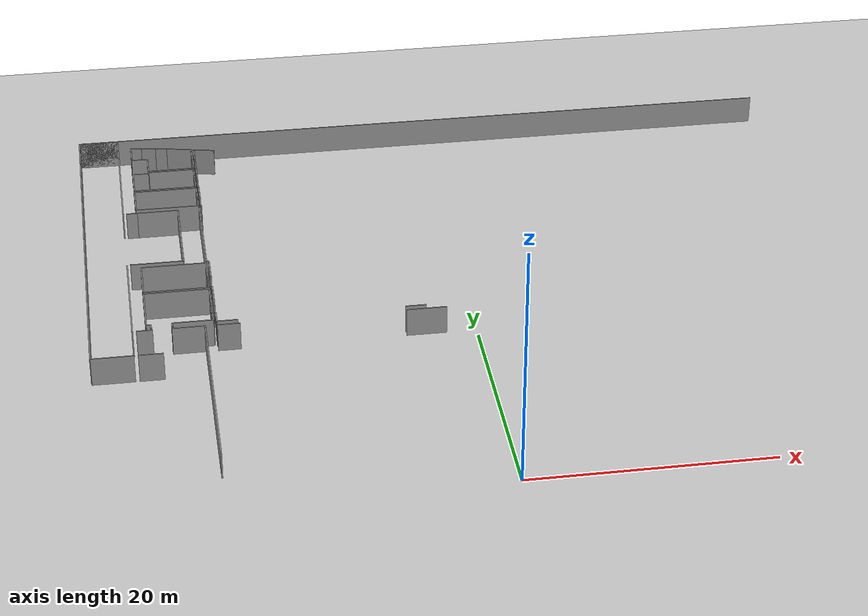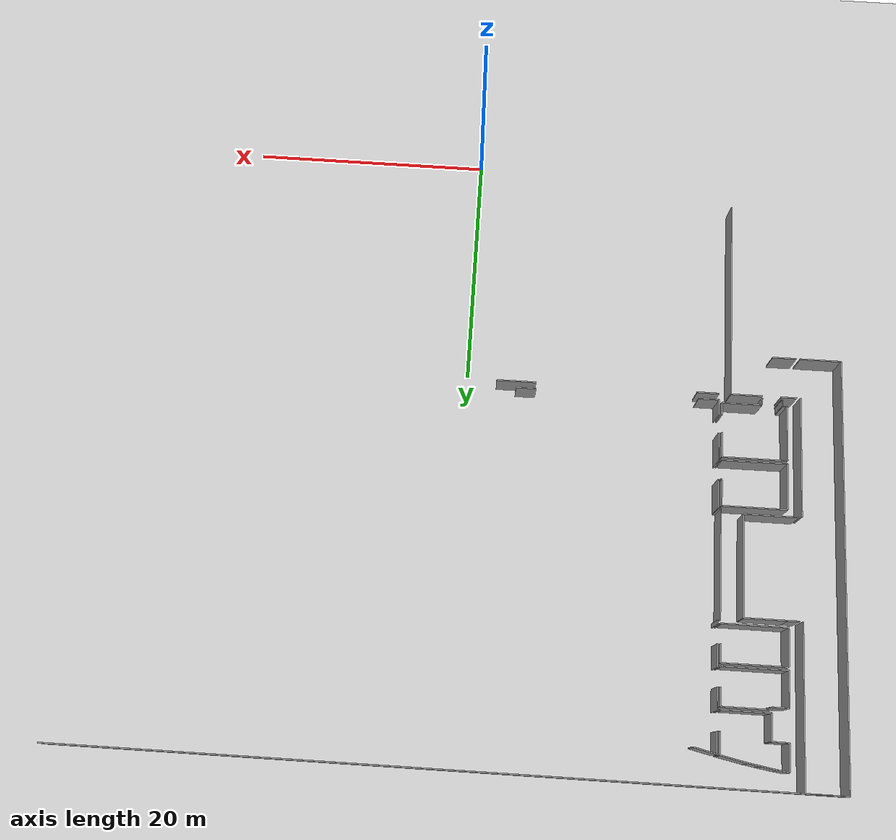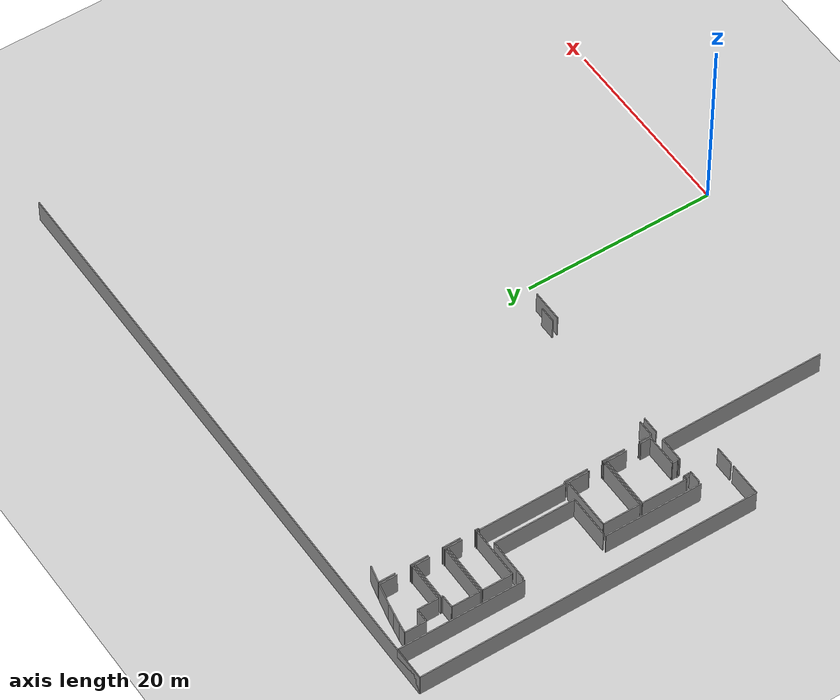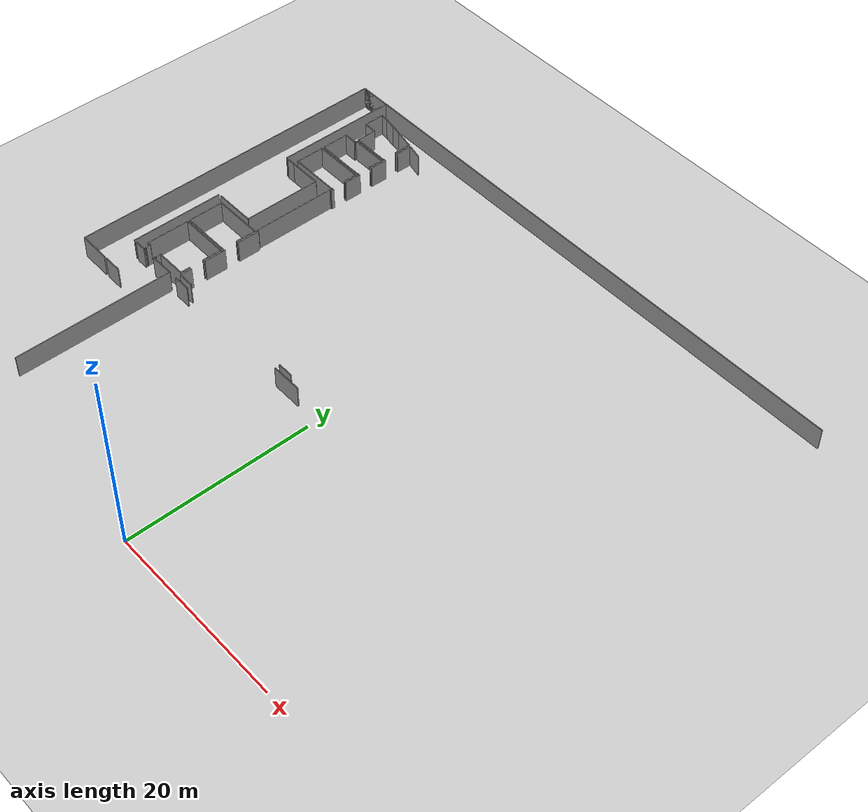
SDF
<sdf version="1.6">
 <world name="default">
  <model name="ground_plane">
   <static>1</static>
   <link name="link">
    <collision name="collision">
     <geometry><plane><normal>0 0 1</normal><size>100 100</size></plane></geometry>
     <surface><friction><ode><mu>100</mu><mu2>50</mu2></ode></friction></surface>
    </collision>
    <visual name="visual">
     <cast_shadows>0</cast_shadows>
     <geometry><plane><normal>0 0 1</normal><size>100 100</size></plane></geometry>
     <material>
      <script><uri>file://media/materials/scripts/gazebo.material</uri><name>Gazebo/Grey</name></script>
     </material>
    </visual>
   </link>
  </model>
  <model name="50041193">
   <static>1</static>
   <link name="Wall_0">
    <collision name="Wall_0_Collision">
     <geometry><box><size>2.23893400435 0.1 2.5</size></box></geometry>
     <pose>1.11946700217 0 1.25 0 0 0</pose>
    </collision>
    <visual name="Wall_0_Visual">
     <pose>1.11946700217 0 1.25 0 0 0</pose>
     <geometry><box><size>2.23893400435 0.1 2.5</size></box></geometry>
     <material>
      <script><uri>file://media/materials/scripts/gazebo.material</uri><name>Gazebo/Grey</name></script>
      <ambient>1 1 1 1</ambient>
     </material>
    </visual>
    <pose>4.6344377089 -3.74422712773 0 0 0 1.57079632679</pose>
   </link>
   <link name="Wall_1">
    <collision name="Wall_1_Collision">
     <geometry><box><size>0.972347669635 0.1 2.5</size></box></geometry>
     <pose>0.486173834817 0 1.25 0 0 0</pose>
    </collision>
    <visual name="Wall_1_Visual">
     <pose>0.486173834817 0 1.25 0 0 0</pose>
     <geometry><box><size>0.972347669635 0.1 2.5</size></box></geometry>
     <material>
      <script><uri>file://media/materials/scripts/gazebo.material</uri><name>Gazebo/Grey</name></script>
      <ambient>1 1 1 1</ambient>
     </material>
    </visual>
    <pose>4.6344377089 -1.50529312339 0 0 0 -0.128531046348</pose>
   </link>
   <link name="Wall_2">
    <collision name="Wall_2_Collision">
     <geometry><box><size>1.2935995405 0.1 2.5</size></box></geometry>
     <pose>0.646799770251 0 1.25 0 0 0</pose>
    </collision>
    <visual name="Wall_2_Visual">
     <pose>0.646799770251 0 1.25 0 0 0</pose>
     <geometry><box><size>1.2935995405 0.1 2.5</size></box></geometry>
     <material>
      <script><uri>file://media/materials/scripts/gazebo.material</uri><name>Gazebo/Grey</name></script>
      <ambient>1 1 1 1</ambient>
     </material>
    </visual>
    <pose>5.59876472607 -1.62992616315 0 0 0 -0.167787734921</pose>
   </link>
   <link name="Wall_3">
    <collision name="Wall_3_Collision">
     <geometry><box><size>1.03198427809 0.1 2.5</size></box></geometry>
     <pose>0.515992139046 0 1.25 0 0 0</pose>
    </collision>
    <visual name="Wall_3_Visual">
     <pose>0.515992139046 0 1.25 0 0 0</pose>
     <geometry><box><size>1.03198427809 0.1 2.5</size></box></geometry>
     <material>
      <script><uri>file://media/materials/scripts/gazebo.material</uri><name>Gazebo/Grey</name></script>
      <ambient>1 1 1 1</ambient>
     </material>
    </visual>
    <pose>6.87419777092 -1.84595930713 0 0 0 -0.165812721549</pose>
   </link>
   <link name="Wall_4">
    <collision name="Wall_4_Collision">
     <geometry><box><size>2.25865235353 0.1 2.5</size></box></geometry>
     <pose>1.12932617677 0 1.25 0 0 0</pose>
    </collision>
    <visual name="Wall_4_Visual">
     <pose>1.12932617677 0 1.25 0 0 0</pose>
     <geometry><box><size>2.25865235353 0.1 2.5</size></box></geometry>
     <material>
      <script><uri>file://media/materials/scripts/gazebo.material</uri><name>Gazebo/Grey</name></script>
      <ambient>1 1 1 1</ambient>
     </material>
    </visual>
    <pose>7.89202790804 -2.016292399 0 0 0 -0.204866128414</pose>
   </link>
   <link name="Wall_5">
    <collision name="Wall_5_Collision">
     <geometry><box><size>1.85869330385 0.1 2.5</size></box></geometry>
     <pose>0.929346651925 0 1.25 0 0 0</pose>
    </collision>
    <visual name="Wall_5_Visual">
     <pose>0.929346651925 0 1.25 0 0 0</pose>
     <geometry><box><size>1.85869330385 0.1 2.5</size></box></geometry>
     <material>
      <script><uri>file://media/materials/scripts/gazebo.material</uri><name>Gazebo/Grey</name></script>
      <ambient>1 1 1 1</ambient>
     </material>
    </visual>
    <pose>10.1034478376 -2.47578380164 0 0 0 -1.57079632679</pose>
   </link>
   <link name="Wall_6">
    <collision name="Wall_6_Collision">
     <geometry><box><size>0.100270692745 0.1 2.5</size></box></geometry>
     <pose>0.0501353463723 0 1.25 0 0 0</pose>
    </collision>
    <visual name="Wall_6_Visual">
     <pose>0.0501353463723 0 1.25 0 0 0</pose>
     <geometry><box><size>0.100270692745 0.1 2.5</size></box></geometry>
     <material>
      <script><uri>file://media/materials/scripts/gazebo.material</uri><name>Gazebo/Grey</name></script>
      <ambient>1 1 1 1</ambient>
     </material>
    </visual>
    <pose>10.1034478376 -5.85833746362 0 0 0 -1.57079632679</pose>
   </link>
   <link name="Wall_7">
    <collision name="Wall_7_Collision">
     <geometry><box><size>4.05797653996 0.1 2.5</size></box></geometry>
     <pose>2.02898826998 0 1.25 0 0 0</pose>
    </collision>
    <visual name="Wall_7_Visual">
     <pose>2.02898826998 0 1.25 0 0 0</pose>
     <geometry><box><size>4.05797653996 0.1 2.5</size></box></geometry>
     <material>
      <script><uri>file://media/materials/scripts/gazebo.material</uri><name>Gazebo/Grey</name></script>
      <ambient>1 1 1 1</ambient>
     </material>
    </visual>
    <pose>10.1034478376 -5.95860815637 0 0 0 3.14159265359</pose>
   </link>
   <link name="Wall_8">
    <collision name="Wall_8_Collision">
     <geometry><box><size>2.20242225526 0.1 2.5</size></box></geometry>
     <pose>1.10121112763 0 1.25 0 0 0</pose>
    </collision>
    <visual name="Wall_8_Visual">
     <pose>1.10121112763 0 1.25 0 0 0</pose>
     <geometry><box><size>2.20242225526 0.1 2.5</size></box></geometry>
     <material>
      <script><uri>file://media/materials/scripts/gazebo.material</uri><name>Gazebo/Grey</name></script>
      <ambient>1 1 1 1</ambient>
     </material>
    </visual>
    <pose>6.04547129767 -5.95860815637 0 0 0 1.57079632679</pose>
   </link>
   <link name="Wall_9">
    <collision name="Wall_9_Collision">
     <geometry><box><size>1.41108426429 0.1 2.5</size></box></geometry>
     <pose>0.705542132143 0 1.25 0 0 0</pose>
    </collision>
    <visual name="Wall_9_Visual">
     <pose>0.705542132143 0 1.25 0 0 0</pose>
     <geometry><box><size>1.41108426429 0.1 2.5</size></box></geometry>
     <material>
      <script><uri>file://media/materials/scripts/gazebo.material</uri><name>Gazebo/Grey</name></script>
      <ambient>1 1 1 1</ambient>
     </material>
    </visual>
    <pose>6.04547129767 -3.7561859011 0 0 0 3.13311766962</pose>
   </link>
   <link name="Wall_10">
    <collision name="Wall_10_Collision">
     <geometry><box><size>2.9570322925 0.1 2.5</size></box></geometry>
     <pose>1.47851614625 0 1.25 0 0 0</pose>
    </collision>
    <visual name="Wall_10_Visual">
     <pose>1.47851614625 0 1.25 0 0 0</pose>
     <geometry><box><size>2.9570322925 0.1 2.5</size></box></geometry>
     <material>
      <script><uri>file://media/materials/scripts/gazebo.material</uri><name>Gazebo/Grey</name></script>
      <ambient>1 1 1 1</ambient>
     </material>
    </visual>
    <pose>4.63786902538 -9.36501582218 0 0 0 1.57079632679</pose>
   </link>
   <link name="Wall_11">
    <collision name="Wall_11_Collision">
     <geometry><box><size>1.38892066034 0.1 2.5</size></box></geometry>
     <pose>0.694460330169 0 1.25 0 0 0</pose>
    </collision>
    <visual name="Wall_11_Visual">
     <pose>0.694460330169 0 1.25 0 0 0</pose>
     <geometry><box><size>1.38892066034 0.1 2.5</size></box></geometry>
     <material>
      <script><uri>file://media/materials/scripts/gazebo.material</uri><name>Gazebo/Grey</name></script>
      <ambient>1 1 1 1</ambient>
     </material>
    </visual>
    <pose>4.63786902538 -6.40798352968 0 0 0 0.0</pose>
   </link>
   <link name="Wall_12">
    <collision name="Wall_12_Collision">
     <geometry><box><size>0.204226873562 0.1 2.5</size></box></geometry>
     <pose>0.102113436781 0 1.25 0 0 0</pose>
    </collision>
    <visual name="Wall_12_Visual">
     <pose>0.102113436781 0 1.25 0 0 0</pose>
     <geometry><box><size>0.204226873562 0.1 2.5</size></box></geometry>
     <material>
      <script><uri>file://media/materials/scripts/gazebo.material</uri><name>Gazebo/Grey</name></script>
      <ambient>1 1 1 1</ambient>
     </material>
    </visual>
    <pose>6.02678968572 -6.40798352968 0 0 0 1.57079632679</pose>
   </link>
   <link name="Wall_13">
    <collision name="Wall_13_Collision">
     <geometry><box><size>4.06712671725 0.1 2.5</size></box></geometry>
     <pose>2.03356335862 0 1.25 0 0 0</pose>
    </collision>
    <visual name="Wall_13_Visual">
     <pose>2.03356335862 0 1.25 0 0 0</pose>
     <geometry><box><size>4.06712671725 0.1 2.5</size></box></geometry>
     <material>
      <script><uri>file://media/materials/scripts/gazebo.material</uri><name>Gazebo/Grey</name></script>
      <ambient>1 1 1 1</ambient>
     </material>
    </visual>
    <pose>6.02678968572 -6.20375665612 0 0 0 0.0</pose>
   </link>
   <link name="Wall_14">
    <collision name="Wall_14_Collision">
     <geometry><box><size>1.53735686962 0.1 2.5</size></box></geometry>
     <pose>0.768678434811 0 1.25 0 0 0</pose>
    </collision>
    <visual name="Wall_14_Visual">
     <pose>0.768678434811 0 1.25 0 0 0</pose>
     <geometry><box><size>1.53735686962 0.1 2.5</size></box></geometry>
     <material>
      <script><uri>file://media/materials/scripts/gazebo.material</uri><name>Gazebo/Grey</name></script>
      <ambient>1 1 1 1</ambient>
     </material>
    </visual>
    <pose>10.093916403 -6.20375665612 0 0 0 -1.57079632679</pose>
   </link>
   <link name="Wall_15">
    <collision name="Wall_15_Collision">
     <geometry><box><size>0.109929213212 0.1 2.5</size></box></geometry>
     <pose>0.0549646066059 0 1.25 0 0 0</pose>
    </collision>
    <visual name="Wall_15_Visual">
     <pose>0.0549646066059 0 1.25 0 0 0</pose>
     <geometry><box><size>0.109929213212 0.1 2.5</size></box></geometry>
     <material>
      <script><uri>file://media/materials/scripts/gazebo.material</uri><name>Gazebo/Grey</name></script>
      <ambient>1 1 1 1</ambient>
     </material>
    </visual>
    <pose>10.093916403 -9.25572203795 0 0 0 -1.57079632679</pose>
   </link>
   <link name="Wall_16">
    <collision name="Wall_16_Collision">
     <geometry><box><size>5.45604741459 0.1 2.5</size></box></geometry>
     <pose>2.72802370729 0 1.25 0 0 0</pose>
    </collision>
    <visual name="Wall_16_Visual">
     <pose>2.72802370729 0 1.25 0 0 0</pose>
     <geometry><box><size>5.45604741459 0.1 2.5</size></box></geometry>
     <material>
      <script><uri>file://media/materials/scripts/gazebo.material</uri><name>Gazebo/Grey</name></script>
      <ambient>1 1 1 1</ambient>
     </material>
    </visual>
    <pose>10.093916403 -9.36565125116 0 0 0 3.14147619035</pose>
   </link>
   <link name="Wall_17">
    <collision name="Wall_17_Collision">
     <geometry><box><size>3.1456276132 0.1 2.5</size></box></geometry>
     <pose>1.5728138066 0 1.25 0 0 0</pose>
    </collision>
    <visual name="Wall_17_Visual">
     <pose>1.5728138066 0 1.25 0 0 0</pose>
     <geometry><box><size>3.1456276132 0.1 2.5</size></box></geometry>
     <material>
      <script><uri>file://media/materials/scripts/gazebo.material</uri><name>Gazebo/Grey</name></script>
      <ambient>1 1 1 1</ambient>
     </material>
    </visual>
    <pose>4.63786902538 -12.7571898789 0 0 0 1.57079632679</pose>
   </link>
   <link name="Wall_18">
    <collision name="Wall_18_Collision">
     <geometry><box><size>5.46850178556 0.1 2.5</size></box></geometry>
     <pose>2.73425089278 0 1.25 0 0 0</pose>
    </collision>
    <visual name="Wall_18_Visual">
     <pose>2.73425089278 0 1.25 0 0 0</pose>
     <geometry><box><size>5.46850178556 0.1 2.5</size></box></geometry>
     <material>
      <script><uri>file://media/materials/scripts/gazebo.material</uri><name>Gazebo/Grey</name></script>
      <ambient>1 1 1 1</ambient>
     </material>
    </visual>
    <pose>4.63786902538 -9.61156226569 0 0 0 0.0</pose>
   </link>
   <link name="Wall_19">
    <collision name="Wall_19_Collision">
     <geometry><box><size>1.52121697358 0.1 2.5</size></box></geometry>
     <pose>0.760608486789 0 1.25 0 0 0</pose>
    </collision>
    <visual name="Wall_19_Visual">
     <pose>0.760608486789 0 1.25 0 0 0</pose>
     <geometry><box><size>1.52121697358 0.1 2.5</size></box></geometry>
     <material>
      <script><uri>file://media/materials/scripts/gazebo.material</uri><name>Gazebo/Grey</name></script>
      <ambient>1 1 1 1</ambient>
     </material>
    </visual>
    <pose>10.1063708109 -9.61156226569 0 0 0 -1.57079632679</pose>
   </link>
   <link name="Wall_20">
    <collision name="Wall_20_Collision">
     <geometry><box><size>0.0955685183067 0.1 2.5</size></box></geometry>
     <pose>0.0477842591534 0 1.25 0 0 0</pose>
    </collision>
    <visual name="Wall_20_Visual">
     <pose>0.0477842591534 0 1.25 0 0 0</pose>
     <geometry><box><size>0.0955685183067 0.1 2.5</size></box></geometry>
     <material>
      <script><uri>file://media/materials/scripts/gazebo.material</uri><name>Gazebo/Grey</name></script>
      <ambient>1 1 1 1</ambient>
     </material>
    </visual>
    <pose>10.1063708109 -12.6664506208 0 0 0 -1.57079632679</pose>
   </link>
   <link name="Wall_21">
    <collision name="Wall_21_Collision">
     <geometry><box><size>5.46850391793 0.1 2.5</size></box></geometry>
     <pose>2.73425195896 0 1.25 0 0 0</pose>
    </collision>
    <visual name="Wall_21_Visual">
     <pose>2.73425195896 0 1.25 0 0 0</pose>
     <geometry><box><size>5.46850391793 0.1 2.5</size></box></geometry>
     <material>
      <script><uri>file://media/materials/scripts/gazebo.material</uri><name>Gazebo/Grey</name></script>
      <ambient>1 1 1 1</ambient>
     </material>
    </visual>
    <pose>10.1063708109 -12.7620191391 0 0 0 3.14070954901</pose>
   </link>
   <link name="Wall_22">
    <collision name="Wall_22_Collision">
     <geometry><box><size>3.91970719433 0.1 2.5</size></box></geometry>
     <pose>1.95985359716 0 1.25 0 0 0</pose>
    </collision>
    <visual name="Wall_22_Visual">
     <pose>1.95985359716 0 1.25 0 0 0</pose>
     <geometry><box><size>3.91970719433 0.1 2.5</size></box></geometry>
     <material>
      <script><uri>file://media/materials/scripts/gazebo.material</uri><name>Gazebo/Grey</name></script>
      <ambient>1 1 1 1</ambient>
     </material>
    </visual>
    <pose>4.63837736856 -26.3525741228 0 0 0 1.57079632679</pose>
   </link>
   <link name="Wall_23">
    <collision name="Wall_23_Collision">
     <geometry><box><size>5.45337857588 0.1 2.5</size></box></geometry>
     <pose>2.72668928794 0 1.25 0 0 0</pose>
    </collision>
    <visual name="Wall_23_Visual">
     <pose>2.72668928794 0 1.25 0 0 0</pose>
     <geometry><box><size>5.45337857588 0.1 2.5</size></box></geometry>
     <material>
      <script><uri>file://media/materials/scripts/gazebo.material</uri><name>Gazebo/Grey</name></script>
      <ambient>1 1 1 1</ambient>
     </material>
    </visual>
    <pose>4.63837736856 -22.4328669285 0 0 0 0.0</pose>
   </link>
   <link name="Wall_24">
    <collision name="Wall_24_Collision">
     <geometry><box><size>2.17265876193 0.1 2.5</size></box></geometry>
     <pose>1.08632938097 0 1.25 0 0 0</pose>
    </collision>
    <visual name="Wall_24_Visual">
     <pose>1.08632938097 0 1.25 0 0 0</pose>
     <geometry><box><size>2.17265876193 0.1 2.5</size></box></geometry>
     <material>
      <script><uri>file://media/materials/scripts/gazebo.material</uri><name>Gazebo/Grey</name></script>
      <ambient>1 1 1 1</ambient>
     </material>
    </visual>
    <pose>10.0917559444 -22.4328669285 0 0 0 -1.57079632679</pose>
   </link>
   <link name="Wall_25">
    <collision name="Wall_25_Collision">
     <geometry><box><size>0.0404132830073 0.1 2.5</size></box></geometry>
     <pose>0.0202066415037 0 1.25 0 0 0</pose>
    </collision>
    <visual name="Wall_25_Visual">
     <pose>0.0202066415037 0 1.25 0 0 0</pose>
     <geometry><box><size>0.0404132830073 0.1 2.5</size></box></geometry>
     <material>
      <script><uri>file://media/materials/scripts/gazebo.material</uri><name>Gazebo/Grey</name></script>
      <ambient>1 1 1 1</ambient>
     </material>
    </visual>
    <pose>10.0917559444 -24.6055256904 0 0 0 0.0</pose>
   </link>
   <link name="Wall_26">
    <collision name="Wall_26_Collision">
     <geometry><box><size>0.120350248453 0.1 2.5</size></box></geometry>
     <pose>0.0601751242264 0 1.25 0 0 0</pose>
    </collision>
    <visual name="Wall_26_Visual">
     <pose>0.0601751242264 0 1.25 0 0 0</pose>
     <geometry><box><size>0.120350248453 0.1 2.5</size></box></geometry>
     <material>
      <script><uri>file://media/materials/scripts/gazebo.material</uri><name>Gazebo/Grey</name></script>
      <ambient>1 1 1 1</ambient>
     </material>
    </visual>
    <pose>10.1321692274 -24.6055256904 0 0 0 -1.57079632679</pose>
   </link>
   <link name="Wall_27">
    <collision name="Wall_27_Collision">
     <geometry><box><size>0.0660846137227 0.1 2.5</size></box></geometry>
     <pose>0.0330423068614 0 1.25 0 0 0</pose>
    </collision>
    <visual name="Wall_27_Visual">
     <pose>0.0330423068614 0 1.25 0 0 0</pose>
     <geometry><box><size>0.0660846137227 0.1 2.5</size></box></geometry>
     <material>
      <script><uri>file://media/materials/scripts/gazebo.material</uri><name>Gazebo/Grey</name></script>
      <ambient>1 1 1 1</ambient>
     </material>
    </visual>
    <pose>10.1321692274 -26.2711121278 0 0 0 -1.57079632679</pose>
   </link>
   <link name="Wall_28">
    <collision name="Wall_28_Collision">
     <geometry><box><size>5.49381337985 0.1 2.5</size></box></geometry>
     <pose>2.74690668992 0 1.25 0 0 0</pose>
    </collision>
    <visual name="Wall_28_Visual">
     <pose>2.74690668992 0 1.25 0 0 0</pose>
     <geometry><box><size>5.49381337985 0.1 2.5</size></box></geometry>
     <material>
      <script><uri>file://media/materials/scripts/gazebo.material</uri><name>Gazebo/Grey</name></script>
      <ambient>1 1 1 1</ambient>
     </material>
    </visual>
    <pose>10.1321692274 -26.3371967415 0 0 0 -3.13879361396</pose>
   </link>
   <link name="Wall_29">
    <collision name="Wall_29_Collision">
     <geometry><box><size>4.75084829769 0.1 2.5</size></box></geometry>
     <pose>2.37542414884 0 1.25 0 0 0</pose>
    </collision>
    <visual name="Wall_29_Visual">
     <pose>2.37542414884 0 1.25 0 0 0</pose>
     <geometry><box><size>4.75084829769 0.1 2.5</size></box></geometry>
     <material>
      <script><uri>file://media/materials/scripts/gazebo.material</uri><name>Gazebo/Grey</name></script>
      <ambient>1 1 1 1</ambient>
     </material>
    </visual>
    <pose>4.63659816742 -31.3484438344 0 0 0 1.57079632679</pose>
   </link>
   <link name="Wall_30">
    <collision name="Wall_30_Collision">
     <geometry><box><size>5.4700268151 0.1 2.5</size></box></geometry>
     <pose>2.73501340755 0 1.25 0 0 0</pose>
    </collision>
    <visual name="Wall_30_Visual">
     <pose>2.73501340755 0 1.25 0 0 0</pose>
     <geometry><box><size>5.4700268151 0.1 2.5</size></box></geometry>
     <material>
      <script><uri>file://media/materials/scripts/gazebo.material</uri><name>Gazebo/Grey</name></script>
      <ambient>1 1 1 1</ambient>
     </material>
    </visual>
    <pose>4.63659816742 -26.5975955367 0 0 0 0.0</pose>
   </link>
   <link name="Wall_31">
    <collision name="Wall_31_Collision">
     <geometry><box><size>2.13529553802 0.1 2.5</size></box></geometry>
     <pose>1.06764776901 0 1.25 0 0 0</pose>
    </collision>
    <visual name="Wall_31_Visual">
     <pose>1.06764776901 0 1.25 0 0 0</pose>
     <geometry><box><size>2.13529553802 0.1 2.5</size></box></geometry>
     <material>
      <script><uri>file://media/materials/scripts/gazebo.material</uri><name>Gazebo/Grey</name></script>
      <ambient>1 1 1 1</ambient>
     </material>
    </visual>
    <pose>10.1066249825 -26.5975955367 0 0 0 -1.57079632679</pose>
   </link>
   <link name="Wall_32">
    <collision name="Wall_32_Collision">
     <geometry><box><size>1.07006239913 0.1 2.5</size></box></geometry>
     <pose>0.535031199563 0 1.25 0 0 0</pose>
    </collision>
    <visual name="Wall_32_Visual">
     <pose>0.535031199563 0 1.25 0 0 0</pose>
     <geometry><box><size>1.07006239913 0.1 2.5</size></box></geometry>
     <material>
      <script><uri>file://media/materials/scripts/gazebo.material</uri><name>Gazebo/Grey</name></script>
      <ambient>1 1 1 1</ambient>
     </material>
    </visual>
    <pose>10.1066249825 -30.27672932 0 0 0 -1.57079632679</pose>
   </link>
   <link name="Wall_33">
    <collision name="Wall_33_Collision">
     <geometry><box><size>3.35671711973 0.1 2.5</size></box></geometry>
     <pose>1.67835855986 0 1.25 0 0 0</pose>
    </collision>
    <visual name="Wall_33_Visual">
     <pose>1.67835855986 0 1.25 0 0 0</pose>
     <geometry><box><size>3.35671711973 0.1 2.5</size></box></geometry>
     <material>
      <script><uri>file://media/materials/scripts/gazebo.material</uri><name>Gazebo/Grey</name></script>
      <ambient>1 1 1 1</ambient>
     </material>
    </visual>
    <pose>10.1066249825 -31.3467917191 0 0 0 3.14159265359</pose>
   </link>
   <link name="Wall_34">
    <collision name="Wall_34_Collision">
     <geometry><box><size>0.565150533125 0.1 2.5</size></box></geometry>
     <pose>0.282575266562 0 1.25 0 0 0</pose>
    </collision>
    <visual name="Wall_34_Visual">
     <pose>0.282575266562 0 1.25 0 0 0</pose>
     <geometry><box><size>0.565150533125 0.1 2.5</size></box></geometry>
     <material>
      <script><uri>file://media/materials/scripts/gazebo.material</uri><name>Gazebo/Grey</name></script>
      <ambient>1 1 1 1</ambient>
     </material>
    </visual>
    <pose>6.7499078628 -31.3467917191 0 0 0 -1.57079632679</pose>
   </link>
   <link name="Wall_35">
    <collision name="Wall_35_Collision">
     <geometry><box><size>0.0940434887593 0.1 2.5</size></box></geometry>
     <pose>0.0470217443796 0 1.25 0 0 0</pose>
    </collision>
    <visual name="Wall_35_Visual">
     <pose>0.0470217443796 0 1.25 0 0 0</pose>
     <geometry><box><size>0.0940434887593 0.1 2.5</size></box></geometry>
     <material>
      <script><uri>file://media/materials/scripts/gazebo.material</uri><name>Gazebo/Grey</name></script>
      <ambient>1 1 1 1</ambient>
     </material>
    </visual>
    <pose>6.7499078628 -31.9119422522 0 0 0 3.14159265359</pose>
   </link>
   <link name="Wall_36">
    <collision name="Wall_36_Collision">
     <geometry><box><size>0.0847662256789 0.1 2.5</size></box></geometry>
     <pose>0.0423831128395 0 1.25 0 0 0</pose>
    </collision>
    <visual name="Wall_36_Visual">
     <pose>0.0423831128395 0 1.25 0 0 0</pose>
     <geometry><box><size>0.0847662256789 0.1 2.5</size></box></geometry>
     <material>
      <script><uri>file://media/materials/scripts/gazebo.material</uri><name>Gazebo/Grey</name></script>
      <ambient>1 1 1 1</ambient>
     </material>
    </visual>
    <pose>5.10948441293 -31.9119422522 0 0 0 3.14159265359</pose>
   </link>
   <link name="Wall_37">
    <collision name="Wall_37_Collision">
     <geometry><box><size>0.564642189942 0.1 2.5</size></box></geometry>
     <pose>0.282321094971 0 1.25 0 0 0</pose>
    </collision>
    <visual name="Wall_37_Visual">
     <pose>0.282321094971 0 1.25 0 0 0</pose>
     <geometry><box><size>0.564642189942 0.1 2.5</size></box></geometry>
     <material>
      <script><uri>file://media/materials/scripts/gazebo.material</uri><name>Gazebo/Grey</name></script>
      <ambient>1 1 1 1</ambient>
     </material>
    </visual>
    <pose>5.02471818725 -31.9119422522 0 0 0 1.57079632679</pose>
   </link>
   <link name="Wall_38">
    <collision name="Wall_38_Collision">
     <geometry><box><size>0.388121705144 0.1 2.5</size></box></geometry>
     <pose>0.194060852572 0 1.25 0 0 0</pose>
    </collision>
    <visual name="Wall_38_Visual">
     <pose>0.194060852572 0 1.25 0 0 0</pose>
     <geometry><box><size>0.388121705144 0.1 2.5</size></box></geometry>
     <material>
      <script><uri>file://media/materials/scripts/gazebo.material</uri><name>Gazebo/Grey</name></script>
      <ambient>1 1 1 1</ambient>
     </material>
    </visual>
    <pose>5.02471818725 -31.3473000623 0 0 0 -3.13864570731</pose>
   </link>
   <link name="Wall_39">
    <collision name="Wall_39_Collision">
     <geometry><box><size>17.3478465312 0.1 2.5</size></box></geometry>
     <pose>8.6739232656 0 1.25 0 0 0</pose>
    </collision>
    <visual name="Wall_39_Visual">
     <pose>8.6739232656 0 1.25 0 0 0</pose>
     <geometry><box><size>17.3478465312 0.1 2.5</size></box></geometry>
     <material>
      <script><uri>file://media/materials/scripts/gazebo.material</uri><name>Gazebo/Grey</name></script>
      <ambient>1 1 1 1</ambient>
     </material>
    </visual>
    <pose>9.37181491225 -32.1330715366 0 0 0 -1.57079632679</pose>
   </link>
   <link name="Wall_56">
    <collision name="Wall_56_Collision">
     <geometry><box><size>2.02447672424 0.1 2.5</size></box></geometry>
     <pose>1.01223836212 0 1.25 0 0 0</pose>
    </collision>
    <visual name="Wall_56_Visual">
     <pose>1.01223836212 0 1.25 0 0 0</pose>
     <geometry><box><size>2.02447672424 0.1 2.5</size></box></geometry>
     <material>
      <script><uri>file://media/materials/scripts/gazebo.material</uri><name>Gazebo/Grey</name></script>
      <ambient>1 1 1 1</ambient>
     </material>
    </visual>
    <pose>5.8299337883 -35.6541105901 0 0 0 3.14159265359</pose>
   </link>
   <link name="Wall_57">
    <collision name="Wall_57_Collision">
     <geometry><box><size>1.32309021821 0.1 2.5</size></box></geometry>
     <pose>0.661545109103 0 1.25 0 0 0</pose>
    </collision>
    <visual name="Wall_57_Visual">
     <pose>0.661545109103 0 1.25 0 0 0</pose>
     <geometry><box><size>1.32309021821 0.1 2.5</size></box></geometry>
     <material>
      <script><uri>file://media/materials/scripts/gazebo.material</uri><name>Gazebo/Grey</name></script>
      <ambient>1 1 1 1</ambient>
     </material>
    </visual>
    <pose>3.80545706406 -32.1412050275 0 0 0 0.0</pose>
   </link>
   <link name="Wall_58">
    <collision name="Wall_58_Collision">
     <geometry><box><size>2.6845726678 0.1 2.5</size></box></geometry>
     <pose>1.3422863339 0 1.25 0 0 0</pose>
    </collision>
    <visual name="Wall_58_Visual">
     <pose>1.3422863339 0 1.25 0 0 0</pose>
     <geometry><box><size>2.6845726678 0.1 2.5</size></box></geometry>
     <material>
      <script><uri>file://media/materials/scripts/gazebo.material</uri><name>Gazebo/Grey</name></script>
      <ambient>1 1 1 1</ambient>
     </material>
    </visual>
    <pose>6.68725456556 -32.1412050275 0 0 0 0.00302971994778</pose>
   </link>
   <link name="Wall_59">
    <collision name="Wall_59_Collision">
     <geometry><box><size>35.6515688741 0.1 2.5</size></box></geometry>
     <pose>17.8257844371 0 1.25 0 0 0</pose>
    </collision>
    <visual name="Wall_59_Visual">
     <pose>17.8257844371 0 1.25 0 0 0</pose>
     <geometry><box><size>35.6515688741 0.1 2.5</size></box></geometry>
     <material>
      <script><uri>file://media/materials/scripts/gazebo.material</uri><name>Gazebo/Grey</name></script>
      <ambient>1 1 1 1</ambient>
     </material>
    </visual>
    <pose>0.0 -35.6515688741 0 0 0 1.57079632679</pose>
   </link>
   <link name="Wall_60">
    <collision name="Wall_60_Collision">
     <geometry><box><size>3.48329457217 0.1 2.5</size></box></geometry>
     <pose>1.74164728608 0 1.25 0 0 0</pose>
    </collision>
    <visual name="Wall_60_Visual">
     <pose>1.74164728608 0 1.25 0 0 0</pose>
     <geometry><box><size>3.48329457217 0.1 2.5</size></box></geometry>
     <material>
      <script><uri>file://media/materials/scripts/gazebo.material</uri><name>Gazebo/Grey</name></script>
      <ambient>1 1 1 1</ambient>
     </material>
    </visual>
   </link>
   <link name="Wall_61">
    <collision name="Wall_61_Collision">
     <geometry><box><size>13.2914585637 0.1 2.5</size></box></geometry>
     <pose>6.64572928184 0 1.25 0 0 0</pose>
    </collision>
    <visual name="Wall_61_Visual">
     <pose>6.64572928184 0 1.25 0 0 0</pose>
     <geometry><box><size>13.2914585637 0.1 2.5</size></box></geometry>
     <material>
      <script><uri>file://media/materials/scripts/gazebo.material</uri><name>Gazebo/Grey</name></script>
      <ambient>1 1 1 1</ambient>
     </material>
    </visual>
    <pose>3.48329457217 -0.0 0 0 0 -1.57079632679</pose>
   </link>
   <link name="Wall_62">
    <collision name="Wall_62_Collision">
     <geometry><box><size>10.2559507924 0.1 2.5</size></box></geometry>
     <pose>5.12797539619 0 1.25 0 0 0</pose>
    </collision>
    <visual name="Wall_62_Visual">
     <pose>5.12797539619 0 1.25 0 0 0</pose>
     <geometry><box><size>10.2559507924 0.1 2.5</size></box></geometry>
     <material>
      <script><uri>file://media/materials/scripts/gazebo.material</uri><name>Gazebo/Grey</name></script>
      <ambient>1 1 1 1</ambient>
     </material>
    </visual>
    <pose>3.48329457217 -21.8907189243 0 0 0 -1.57079632679</pose>
   </link>
   <link name="Wall_63">
    <collision name="Wall_63_Collision">
     <geometry><box><size>3.48329472054 0.1 2.5</size></box></geometry>
     <pose>1.74164736027 0 1.25 0 0 0</pose>
    </collision>
    <visual name="Wall_63_Visual">
     <pose>1.74164736027 0 1.25 0 0 0</pose>
     <geometry><box><size>3.48329472054 0.1 2.5</size></box></geometry>
     <material>
      <script><uri>file://media/materials/scripts/gazebo.material</uri><name>Gazebo/Grey</name></script>
      <ambient>1 1 1 1</ambient>
     </material>
    </visual>
    <pose>3.48329457217 -35.6505521878 0 0 0 -3.14130077867</pose>
   </link>
   <link name="Wall_64">
    <collision name="Wall_64_Collision">
     <geometry><box><size>3.53844980747 0.1 2.5</size></box></geometry>
     <pose>1.76922490373 0 1.25 0 0 0</pose>
    </collision>
    <visual name="Wall_64_Visual">
     <pose>1.76922490373 0 1.25 0 0 0</pose>
     <geometry><box><size>3.53844980747 0.1 2.5</size></box></geometry>
     <material>
      <script><uri>file://media/materials/scripts/gazebo.material</uri><name>Gazebo/Grey</name></script>
      <ambient>1 1 1 1</ambient>
     </material>
    </visual>
    <pose>4.72314359424 -13.3064546876 0 0 0 0.0</pose>
   </link>
   <link name="Wall_65">
    <collision name="Wall_65_Collision">
     <geometry><box><size>8.54766352765 0.1 2.5</size></box></geometry>
     <pose>4.27383176382 0 1.25 0 0 0</pose>
    </collision>
    <visual name="Wall_65_Visual">
     <pose>4.27383176382 0 1.25 0 0 0</pose>
     <geometry><box><size>8.54766352765 0.1 2.5</size></box></geometry>
     <material>
      <script><uri>file://media/materials/scripts/gazebo.material</uri><name>Gazebo/Grey</name></script>
      <ambient>1 1 1 1</ambient>
     </material>
    </visual>
    <pose>8.26159340171 -13.3064546876 0 0 0 -1.57079632679</pose>
   </link>
   <link name="Wall_66">
    <collision name="Wall_66_Collision">
     <geometry><box><size>4.50048928031 0.1 2.5</size></box></geometry>
     <pose>2.25024464016 0 1.25 0 0 0</pose>
    </collision>
    <visual name="Wall_66_Visual">
     <pose>2.25024464016 0 1.25 0 0 0</pose>
     <geometry><box><size>4.50048928031 0.1 2.5</size></box></geometry>
     <material>
      <script><uri>file://media/materials/scripts/gazebo.material</uri><name>Gazebo/Grey</name></script>
      <ambient>1 1 1 1</ambient>
     </material>
    </visual>
    <pose>8.26159340171 -21.8541182152 0 0 0 3.14159265359</pose>
   </link>
   <link name="Wall_67">
    <collision name="Wall_67_Collision">
     <geometry><box><size>0.962046053755 0.1 2.5</size></box></geometry>
     <pose>0.481023026877 0 1.25 0 0 0</pose>
    </collision>
    <visual name="Wall_67_Visual">
     <pose>0.481023026877 0 1.25 0 0 0</pose>
     <geometry><box><size>0.962046053755 0.1 2.5</size></box></geometry>
     <material>
      <script><uri>file://media/materials/scripts/gazebo.material</uri><name>Gazebo/Grey</name></script>
      <ambient>1 1 1 1</ambient>
     </material>
    </visual>
    <pose>3.76110412139 -13.3100130898 0 0 0 0.00369879422851</pose>
   </link>
   <link name="Wall_73">
    <collision name="Wall_73_Collision">
     <geometry><box><size>9.1700026688 0.1 2.5</size></box></geometry>
     <pose>4.5850013344 0 1.25 0 0 0</pose>
    </collision>
    <visual name="Wall_73_Visual">
     <pose>4.5850013344 0 1.25 0 0 0</pose>
     <geometry><box><size>9.1700026688 0.1 2.5</size></box></geometry>
     <material>
      <script><uri>file://media/materials/scripts/gazebo.material</uri><name>Gazebo/Grey</name></script>
      <ambient>1 1 1 1</ambient>
     </material>
    </visual>
    <pose>10.1503424962 -22.1789495088 0 0 0 1.57079632679</pose>
   </link>
   <link name="Wall_74">
    <collision name="Wall_74_Collision">
     <geometry><box><size>0.183003545694 0.1 2.5</size></box></geometry>
     <pose>0.0915017728468 0 1.25 0 0 0</pose>
    </collision>
    <visual name="Wall_74_Visual">
     <pose>0.0915017728468 0 1.25 0 0 0</pose>
     <geometry><box><size>0.183003545694 0.1 2.5</size></box></geometry>
     <material>
      <script><uri>file://media/materials/scripts/gazebo.material</uri><name>Gazebo/Grey</name></script>
      <ambient>1 1 1 1</ambient>
     </material>
    </visual>
    <pose>10.1503424962 -13.00894684 0 0 0 0.0</pose>
   </link>
   <link name="Wall_75">
    <collision name="Wall_75_Collision">
     <geometry><box><size>0.357873600468 0.1 2.5</size></box></geometry>
     <pose>0.178936800234 0 1.25 0 0 0</pose>
    </collision>
    <visual name="Wall_75_Visual">
     <pose>0.178936800234 0 1.25 0 0 0</pose>
     <geometry><box><size>0.357873600468 0.1 2.5</size></box></geometry>
     <material>
      <script><uri>file://media/materials/scripts/gazebo.material</uri><name>Gazebo/Grey</name></script>
      <ambient>1 1 1 1</ambient>
     </material>
    </visual>
    <pose>10.3333460419 -13.00894684 0 0 0 1.57079632679</pose>
   </link>
   <link name="Wall_76">
    <collision name="Wall_76_Collision">
     <geometry><box><size>1.88760532235 0.1 2.5</size></box></geometry>
     <pose>0.943802661177 0 1.25 0 0 0</pose>
    </collision>
    <visual name="Wall_76_Visual">
     <pose>0.943802661177 0 1.25 0 0 0</pose>
     <geometry><box><size>1.88760532235 0.1 2.5</size></box></geometry>
     <material>
      <script><uri>file://media/materials/scripts/gazebo.material</uri><name>Gazebo/Grey</name></script>
      <ambient>1 1 1 1</ambient>
     </material>
    </visual>
    <pose>10.3333460419 -11.1290937512 0 0 0 1.57079632679</pose>
   </link>
   <link name="Wall_77">
    <collision name="Wall_77_Collision">
     <geometry><box><size>1.85049627003 0.1 2.5</size></box></geometry>
     <pose>0.925248135016 0 1.25 0 0 0</pose>
    </collision>
    <visual name="Wall_77_Visual">
     <pose>0.925248135016 0 1.25 0 0 0</pose>
     <geometry><box><size>1.85049627003 0.1 2.5</size></box></geometry>
     <material>
      <script><uri>file://media/materials/scripts/gazebo.material</uri><name>Gazebo/Grey</name></script>
      <ambient>1 1 1 1</ambient>
     </material>
    </visual>
    <pose>10.3333460419 -7.70870664786 0 0 0 1.57079632679</pose>
   </link>
   <link name="Wall_78">
    <collision name="Wall_78_Collision">
     <geometry><box><size>1.75340272218 0.1 2.5</size></box></geometry>
     <pose>0.876701361089 0 1.25 0 0 0</pose>
    </collision>
    <visual name="Wall_78_Visual">
     <pose>0.876701361089 0 1.25 0 0 0</pose>
     <geometry><box><size>1.75340272218 0.1 2.5</size></box></geometry>
     <material>
      <script><uri>file://media/materials/scripts/gazebo.material</uri><name>Gazebo/Grey</name></script>
      <ambient>1 1 1 1</ambient>
     </material>
    </visual>
    <pose>10.3333460419 -4.28687076645 0 0 0 1.57079632679</pose>
   </link>
   <link name="Wall_79">
    <collision name="Wall_79_Collision">
     <geometry><box><size>1.8685244469 0.1 2.5</size></box></geometry>
     <pose>0.934262223449 0 1.25 0 0 0</pose>
    </collision>
    <visual name="Wall_79_Visual">
     <pose>0.934262223449 0 1.25 0 0 0</pose>
     <geometry><box><size>1.8685244469 0.1 2.5</size></box></geometry>
     <material>
      <script><uri>file://media/materials/scripts/gazebo.material</uri><name>Gazebo/Grey</name></script>
      <ambient>1 1 1 1</ambient>
     </material>
    </visual>
    <pose>10.3333460419 -2.53346804428 0 0 0 -0.225383680596</pose>
   </link>
   <link name="Wall_82">
    <collision name="Wall_82_Collision">
     <geometry><box><size>1.71819995679 0.1 2.5</size></box></geometry>
     <pose>0.859099978395 0 1.25 0 0 0</pose>
    </collision>
    <visual name="Wall_82_Visual">
     <pose>0.859099978395 0 1.25 0 0 0</pose>
     <geometry><box><size>1.71819995679 0.1 2.5</size></box></geometry>
     <material>
      <script><uri>file://media/materials/scripts/gazebo.material</uri><name>Gazebo/Grey</name></script>
      <ambient>1 1 1 1</ambient>
     </material>
    </visual>
    <pose>27.5481337451 -31.5877463876 0 0 0 3.14159265359</pose>
   </link>
   <link name="Wall_83">
    <collision name="Wall_83_Collision">
     <geometry><box><size>1.72976476419 0.1 2.5</size></box></geometry>
     <pose>0.864882382096 0 1.25 0 0 0</pose>
    </collision>
    <visual name="Wall_83_Visual">
     <pose>0.864882382096 0 1.25 0 0 0</pose>
     <geometry><box><size>1.72976476419 0.1 2.5</size></box></geometry>
     <material>
      <script><uri>file://media/materials/scripts/gazebo.material</uri><name>Gazebo/Grey</name></script>
      <ambient>1 1 1 1</ambient>
     </material>
    </visual>
    <pose>12.0890363084 -31.5877463876 0 0 0 3.14159265359</pose>
   </link>
   <link name="Wall_84">
    <collision name="Wall_84_Collision">
     <geometry><box><size>1.33262165288 0.1 2.5</size></box></geometry>
     <pose>0.666310826439 0 1.25 0 0 0</pose>
    </collision>
    <visual name="Wall_84_Visual">
     <pose>0.666310826439 0 1.25 0 0 0</pose>
     <geometry><box><size>1.33262165288 0.1 2.5</size></box></geometry>
     <material>
      <script><uri>file://media/materials/scripts/gazebo.material</uri><name>Gazebo/Grey</name></script>
      <ambient>1 1 1 1</ambient>
     </material>
    </visual>
    <pose>10.3592715442 -31.5877463876 0 0 0 1.57079632679</pose>
   </link>
   <link name="Wall_85">
    <collision name="Wall_85_Collision">
     <geometry><box><size>2.43623470205 0.1 2.5</size></box></geometry>
     <pose>1.21811735102 0 1.25 0 0 0</pose>
    </collision>
    <visual name="Wall_85_Visual">
     <pose>1.21811735102 0 1.25 0 0 0</pose>
     <geometry><box><size>2.43623470205 0.1 2.5</size></box></geometry>
     <material>
      <script><uri>file://media/materials/scripts/gazebo.material</uri><name>Gazebo/Grey</name></script>
      <ambient>1 1 1 1</ambient>
     </material>
    </visual>
    <pose>10.3592715442 -28.6837088719 0 0 0 1.57079632679</pose>
   </link>
   <link name="Wall_86">
    <collision name="Wall_86_Collision">
     <geometry><box><size>2.50219222997 0.1 2.5</size></box></geometry>
     <pose>1.25109611499 0 1.25 0 0 0</pose>
    </collision>
    <visual name="Wall_86_Visual">
     <pose>1.25109611499 0 1.25 0 0 0</pose>
     <geometry><box><size>2.50219222997 0.1 2.5</size></box></geometry>
     <material>
      <script><uri>file://media/materials/scripts/gazebo.material</uri><name>Gazebo/Grey</name></script>
      <ambient>1 1 1 1</ambient>
     </material>
    </visual>
    <pose>10.3592715442 -24.6939774041 0 0 0 1.57079632679</pose>
   </link>
   <link name="Wall_87">
    <collision name="Wall_87_Collision">
     <geometry><box><size>0.209322959571 0.1 2.5</size></box></geometry>
     <pose>0.104661479785 0 1.25 0 0 0</pose>
    </collision>
    <visual name="Wall_87_Visual">
     <pose>0.104661479785 0 1.25 0 0 0</pose>
     <geometry><box><size>0.209322959571 0.1 2.5</size></box></geometry>
     <material>
      <script><uri>file://media/materials/scripts/gazebo.material</uri><name>Gazebo/Grey</name></script>
      <ambient>1 1 1 1</ambient>
     </material>
    </visual>
    <pose>10.3592715442 -22.1917851742 0 0 0 3.08023424842</pose>
   </link>
   <link name="Wall_89">
    <collision name="Wall_89_Collision">
     <geometry><box><size>1.86523822232 0.1 2.5</size></box></geometry>
     <pose>0.932619111162 0 1.25 0 0 0</pose>
    </collision>
    <visual name="Wall_89_Visual">
     <pose>0.932619111162 0 1.25 0 0 0</pose>
     <geometry><box><size>1.86523822232 0.1 2.5</size></box></geometry>
     <material>
      <script><uri>file://media/materials/scripts/gazebo.material</uri><name>Gazebo/Grey</name></script>
      <ambient>1 1 1 1</ambient>
     </material>
    </visual>
    <pose>10.3499942811 -32.1352319951 0 0 0 0.0</pose>
   </link>
   <link name="Wall_90">
    <collision name="Wall_90_Collision">
     <geometry><box><size>3.35531917598 0.1 2.5</size></box></geometry>
     <pose>1.67765958799 0 1.25 0 0 0</pose>
    </collision>
    <visual name="Wall_90_Visual">
     <pose>1.67765958799 0 1.25 0 0 0</pose>
     <geometry><box><size>3.35531917598 0.1 2.5</size></box></geometry>
     <material>
      <script><uri>file://media/materials/scripts/gazebo.material</uri><name>Gazebo/Grey</name></script>
      <ambient>1 1 1 1</ambient>
     </material>
    </visual>
    <pose>25.861196894 -32.1352319951 0 0 0 0.0</pose>
   </link>
   <link name="Wall_335">
    <collision name="Wall_335_Collision">
     <geometry><box><size>63.4672817619 0.1 2.5</size></box></geometry>
     <pose>31.733640881 0 1.25 0 0 0</pose>
    </collision>
    <visual name="Wall_335_Visual">
     <pose>31.733640881 0 1.25 0 0 0</pose>
     <geometry><box><size>63.4672817619 0.1 2.5</size></box></geometry>
     <material>
      <script><uri>file://media/materials/scripts/gazebo.material</uri><name>Gazebo/Grey</name></script>
      <ambient>1 1 1 1</ambient>
     </material>
    </visual>
   </link>
   <pose>-31.7 53.0309199741 0 0 0 0</pose>
  </model>
 </world>
</sdf>
